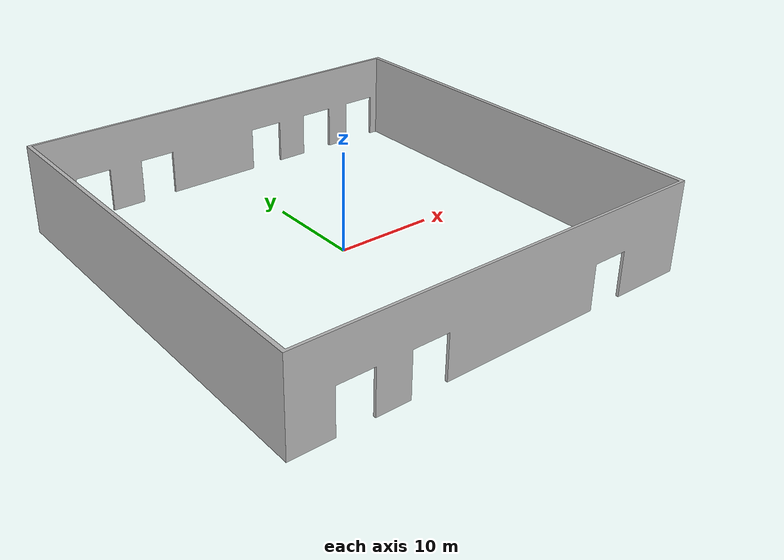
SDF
<?xml version="1.0" ?>
<sdf version="1.7">
  <model name="aws_robomaker_warehouse_WallB_01_docks_i">
    <static>true</static>
    <link name="link">
      <collision name="collision">
        <geometry><mesh><uri>model://aws_robomaker_warehouse_WallB_01_docks_i/meshes/aws_robomaker_warehouse_WallB_01_docks_i_collision.DAE</uri></mesh></geometry>
      </collision>
      <visual name="visual">
        <geometry><mesh><uri>model://aws_robomaker_warehouse_WallB_01_docks_i/meshes/aws_robomaker_warehouse_WallB_01_docks_i_visual.DAE</uri></mesh></geometry>
      </visual>
    </link>
  </model>
</sdf>
